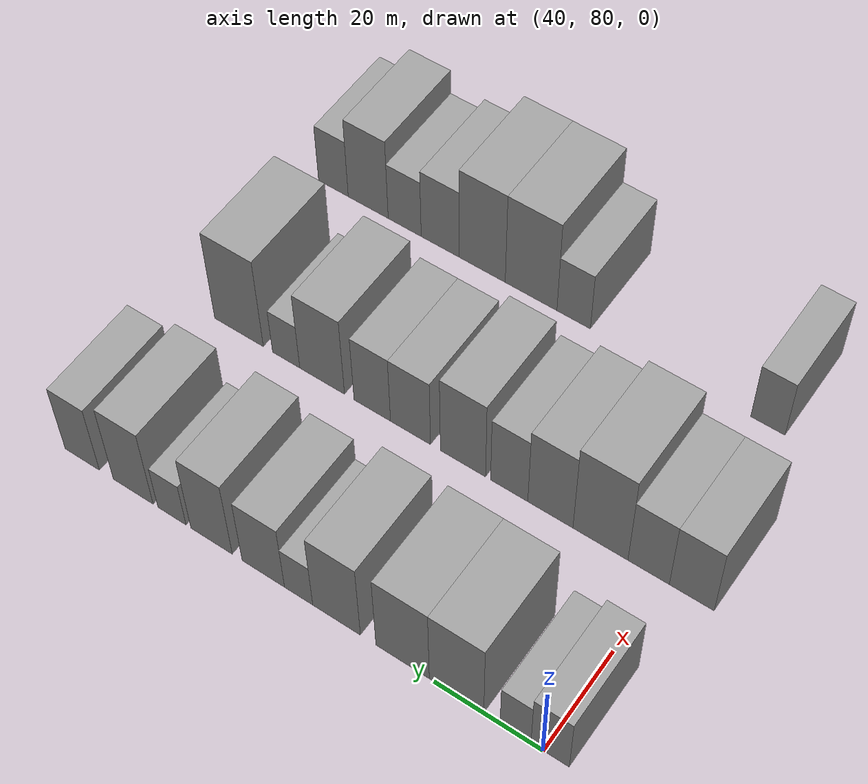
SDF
<sdf version="1.6">
 <world name="default">
  <model name="building_49">
   <static>1</static>
   <pose>50.0000 78.7735 0 0.000000 0.000000 0.000000</pose>
   <link name="link">
    <pose>0 0 7.50 0 0 0</pose>
    <collision name="collision"><geometry><box><size>20.0000 6.9052 15.0000</size></box></geometry></collision>
    <visual name="visual">
     <cast_shadows>0</cast_shadows>
     <geometry><box><size>20.0000 6.9052 15.0000</size></box></geometry>
     <material>
      <script>
       <uri>model://grey_wall/materials/scripts</uri>
       <uri>model://grey_wall/materials/textures</uri>
       <name>vrc/grey_wall</name>
      </script>
     </material>
    </visual>
   </link>
  </model>
  <model name="building_50">
   <static>1</static>
   <pose>50.0000 85.0371 0 0.000000 0.000000 0.000000</pose>
   <link name="link">
    <pose>0 0 6.00 0 0 0</pose>
    <collision name="collision"><geometry><box><size>20.0000 5.6220 12.0000</size></box></geometry></collision>
    <visual name="visual">
     <cast_shadows>0</cast_shadows>
     <geometry><box><size>20.0000 5.6220 12.0000</size></box></geometry>
     <material>
      <script>
       <uri>model://grey_wall/materials/scripts</uri>
       <uri>model://grey_wall/materials/textures</uri>
       <name>vrc/grey_wall</name>
      </script>
     </material>
    </visual>
   </link>
  </model>
  <model name="building_51">
   <static>1</static>
   <pose>50.0000 95.9255 0 0.000000 0.000000 0.000000</pose>
   <link name="link">
    <pose>0 0 10.50 0 0 0</pose>
    <collision name="collision"><geometry><box><size>20.0000 10.1547 21.0000</size></box></geometry></collision>
    <visual name="visual">
     <cast_shadows>0</cast_shadows>
     <geometry><box><size>20.0000 10.1547 21.0000</size></box></geometry>
     <material>
      <script>
       <uri>model://grey_wall/materials/scripts</uri>
       <uri>model://grey_wall/materials/textures</uri>
       <name>vrc/grey_wall</name>
      </script>
     </material>
    </visual>
   </link>
  </model>
  <model name="building_52">
   <static>1</static>
   <pose>50.0000 106.0826 0 0.000000 0.000000 0.000000</pose>
   <link name="link">
    <pose>0 0 10.50 0 0 0</pose>
    <collision name="collision"><geometry><box><size>20.0000 10.1595 21.0000</size></box></geometry></collision>
    <visual name="visual">
     <cast_shadows>0</cast_shadows>
     <geometry><box><size>20.0000 10.1595 21.0000</size></box></geometry>
     <material>
      <script>
       <uri>model://grey_wall/materials/scripts</uri>
       <uri>model://grey_wall/materials/textures</uri>
       <name>vrc/grey_wall</name>
      </script>
     </material>
    </visual>
   </link>
  </model>
  <model name="building_53">
   <static>1</static>
   <pose>50.0000 118.8190 0 0.000000 0.000000 0.000000</pose>
   <link name="link">
    <pose>0 0 10.50 0 0 0</pose>
    <collision name="collision"><geometry><box><size>20.0000 9.3132 21.0000</size></box></geometry></collision>
    <visual name="visual">
     <cast_shadows>0</cast_shadows>
     <geometry><box><size>20.0000 9.3132 21.0000</size></box></geometry>
     <material>
      <script>
       <uri>model://grey_wall/materials/scripts</uri>
       <uri>model://grey_wall/materials/textures</uri>
       <name>vrc/grey_wall</name>
      </script>
     </material>
    </visual>
   </link>
  </model>
  <model name="building_54">
   <static>1</static>
   <pose>50.0000 126.2785 0 0.000000 0.000000 0.000000</pose>
   <link name="link">
    <pose>0 0 6.00 0 0 0</pose>
    <collision name="collision"><geometry><box><size>20.0000 5.6057 12.0000</size></box></geometry></collision>
    <visual name="visual">
     <cast_shadows>0</cast_shadows>
     <geometry><box><size>20.0000 5.6057 12.0000</size></box></geometry>
     <material>
      <script>
       <uri>model://grey_wall/materials/scripts</uri>
       <uri>model://grey_wall/materials/textures</uri>
       <name>vrc/grey_wall</name>
      </script>
     </material>
    </visual>
   </link>
  </model>
  <model name="building_55">
   <static>1</static>
   <pose>50.0000 133.3450 0 0.000000 0.000000 0.000000</pose>
   <link name="link">
    <pose>0 0 9.00 0 0 0</pose>
    <collision name="collision"><geometry><box><size>20.0000 8.5273 18.0000</size></box></geometry></collision>
    <visual name="visual">
     <cast_shadows>0</cast_shadows>
     <geometry><box><size>20.0000 8.5273 18.0000</size></box></geometry>
     <material>
      <script>
       <uri>model://grey_wall/materials/scripts</uri>
       <uri>model://grey_wall/materials/textures</uri>
       <name>vrc/grey_wall</name>
      </script>
     </material>
    </visual>
   </link>
  </model>
  <model name="building_56">
   <static>1</static>
   <pose>50.0000 143.8687 0 0.000000 0.000000 0.000000</pose>
   <link name="link">
    <pose>0 0 10.50 0 0 0</pose>
    <collision name="collision"><geometry><box><size>20.0000 8.5202 21.0000</size></box></geometry></collision>
    <visual name="visual">
     <cast_shadows>0</cast_shadows>
     <geometry><box><size>20.0000 8.5202 21.0000</size></box></geometry>
     <material>
      <script>
       <uri>model://grey_wall/materials/scripts</uri>
       <uri>model://grey_wall/materials/textures</uri>
       <name>vrc/grey_wall</name>
      </script>
     </material>
    </visual>
   </link>
  </model>
  <model name="building_57">
   <static>1</static>
   <pose>50.0000 152.0694 0 0.000000 0.000000 0.000000</pose>
   <link name="link">
    <pose>0 0 6.00 0 0 0</pose>
    <collision name="collision"><geometry><box><size>20.0000 5.8811 12.0000</size></box></geometry></collision>
    <visual name="visual">
     <cast_shadows>0</cast_shadows>
     <geometry><box><size>20.0000 5.8811 12.0000</size></box></geometry>
     <material>
      <script>
       <uri>model://grey_wall/materials/scripts</uri>
       <uri>model://grey_wall/materials/textures</uri>
       <name>vrc/grey_wall</name>
      </script>
     </material>
    </visual>
   </link>
  </model>
  <model name="building_58">
   <static>1</static>
   <pose>50.0000 160.2288 0 0.000000 0.000000 0.000000</pose>
   <link name="link">
    <pose>0 0 10.50 0 0 0</pose>
    <collision name="collision"><geometry><box><size>20.0000 8.4379 21.0000</size></box></geometry></collision>
    <visual name="visual">
     <cast_shadows>0</cast_shadows>
     <geometry><box><size>20.0000 8.4379 21.0000</size></box></geometry>
     <material>
      <script>
       <uri>model://grey_wall/materials/scripts</uri>
       <uri>model://grey_wall/materials/textures</uri>
       <name>vrc/grey_wall</name>
      </script>
     </material>
    </visual>
   </link>
  </model>
  <model name="building_59">
   <static>1</static>
   <pose>50.0000 171.1555 0 0.000000 0.000000 0.000000</pose>
   <link name="link">
    <pose>0 0 9.00 0 0 0</pose>
    <collision name="collision"><geometry><box><size>20.0000 7.4154 18.0000</size></box></geometry></collision>
    <visual name="visual">
     <cast_shadows>0</cast_shadows>
     <geometry><box><size>20.0000 7.4154 18.0000</size></box></geometry>
     <material>
      <script>
       <uri>model://grey_wall/materials/scripts</uri>
       <uri>model://grey_wall/materials/textures</uri>
       <name>vrc/grey_wall</name>
      </script>
     </material>
    </visual>
   </link>
  </model>
  <model name="building_128">
   <static>1</static>
   <pose>85.0000 74.6998 0 0.000000 0.000000 0.000000</pose>
   <link name="link">
    <pose>0 0 9.00 0 0 0</pose>
    <collision name="collision"><geometry><box><size>20.0000 8.2606 18.0000</size></box></geometry></collision>
    <visual name="visual">
     <cast_shadows>0</cast_shadows>
     <geometry><box><size>20.0000 8.2606 18.0000</size></box></geometry>
     <material>
      <script>
       <uri>model://grey_wall/materials/scripts</uri>
       <uri>model://grey_wall/materials/textures</uri>
       <name>vrc/grey_wall</name>
      </script>
     </material>
    </visual>
   </link>
  </model>
  <model name="building_129">
   <static>1</static>
   <pose>85.0000 82.6977 0 0.000000 0.000000 0.000000</pose>
   <link name="link">
    <pose>0 0 9.00 0 0 0</pose>
    <collision name="collision"><geometry><box><size>20.0000 7.7354 18.0000</size></box></geometry></collision>
    <visual name="visual">
     <cast_shadows>0</cast_shadows>
     <geometry><box><size>20.0000 7.7354 18.0000</size></box></geometry>
     <material>
      <script>
       <uri>model://grey_wall/materials/scripts</uri>
       <uri>model://grey_wall/materials/textures</uri>
       <name>vrc/grey_wall</name>
      </script>
     </material>
    </visual>
   </link>
  </model>
  <model name="building_130">
   <static>1</static>
   <pose>85.0000 91.8012 0 0.000000 0.000000 0.000000</pose>
   <link name="link">
    <pose>0 0 12.00 0 0 0</pose>
    <collision name="collision"><geometry><box><size>20.0000 10.4715 24.0000</size></box></geometry></collision>
    <visual name="visual">
     <cast_shadows>0</cast_shadows>
     <geometry><box><size>20.0000 10.4715 24.0000</size></box></geometry>
     <material>
      <script>
       <uri>model://grey_wall/materials/scripts</uri>
       <uri>model://grey_wall/materials/textures</uri>
       <name>vrc/grey_wall</name>
      </script>
     </material>
    </visual>
   </link>
  </model>
  <model name="building_131">
   <static>1</static>
   <pose>85.0000 101.4174 0 0.000000 0.000000 0.000000</pose>
   <link name="link">
    <pose>0 0 10.50 0 0 0</pose>
    <collision name="collision"><geometry><box><size>20.0000 8.7608 21.0000</size></box></geometry></collision>
    <visual name="visual">
     <cast_shadows>0</cast_shadows>
     <geometry><box><size>20.0000 8.7608 21.0000</size></box></geometry>
     <material>
      <script>
       <uri>model://grey_wall/materials/scripts</uri>
       <uri>model://grey_wall/materials/textures</uri>
       <name>vrc/grey_wall</name>
      </script>
     </material>
    </visual>
   </link>
  </model>
  <model name="building_132">
   <static>1</static>
   <pose>85.0000 109.4583 0 0.000000 0.000000 0.000000</pose>
   <link name="link">
    <pose>0 0 9.00 0 0 0</pose>
    <collision name="collision"><geometry><box><size>20.0000 7.3210 18.0000</size></box></geometry></collision>
    <visual name="visual">
     <cast_shadows>0</cast_shadows>
     <geometry><box><size>20.0000 7.3210 18.0000</size></box></geometry>
     <material>
      <script>
       <uri>model://grey_wall/materials/scripts</uri>
       <uri>model://grey_wall/materials/textures</uri>
       <name>vrc/grey_wall</name>
      </script>
     </material>
    </visual>
   </link>
  </model>
  <model name="building_133">
   <static>1</static>
   <pose>85.0000 118.6476 0 0.000000 0.000000 0.000000</pose>
   <link name="link">
    <pose>0 0 10.50 0 0 0</pose>
    <collision name="collision"><geometry><box><size>20.0000 9.0576 21.0000</size></box></geometry></collision>
    <visual name="visual">
     <cast_shadows>0</cast_shadows>
     <geometry><box><size>20.0000 9.0576 21.0000</size></box></geometry>
     <material>
      <script>
       <uri>model://grey_wall/materials/scripts</uri>
       <uri>model://grey_wall/materials/textures</uri>
       <name>vrc/grey_wall</name>
      </script>
     </material>
    </visual>
   </link>
  </model>
  <model name="building_134">
   <static>1</static>
   <pose>85.0000 129.2675 0 0.000000 0.000000 0.000000</pose>
   <link name="link">
    <pose>0 0 9.00 0 0 0</pose>
    <collision name="collision"><geometry><box><size>20.0000 8.1823 18.0000</size></box></geometry></collision>
    <visual name="visual">
     <cast_shadows>0</cast_shadows>
     <geometry><box><size>20.0000 8.1823 18.0000</size></box></geometry>
     <material>
      <script>
       <uri>model://grey_wall/materials/scripts</uri>
       <uri>model://grey_wall/materials/textures</uri>
       <name>vrc/grey_wall</name>
      </script>
     </material>
    </visual>
   </link>
  </model>
  <model name="building_135">
   <static>1</static>
   <pose>85.0000 137.1493 0 0.000000 0.000000 0.000000</pose>
   <link name="link">
    <pose>0 0 9.00 0 0 0</pose>
    <collision name="collision"><geometry><box><size>20.0000 7.5813 18.0000</size></box></geometry></collision>
    <visual name="visual">
     <cast_shadows>0</cast_shadows>
     <geometry><box><size>20.0000 7.5813 18.0000</size></box></geometry>
     <material>
      <script>
       <uri>model://grey_wall/materials/scripts</uri>
       <uri>model://grey_wall/materials/textures</uri>
       <name>vrc/grey_wall</name>
      </script>
     </material>
    </visual>
   </link>
  </model>
  <model name="building_136">
   <static>1</static>
   <pose>85.0000 147.6770 0 0.000000 0.000000 0.000000</pose>
   <link name="link">
    <pose>0 0 10.50 0 0 0</pose>
    <collision name="collision"><geometry><box><size>20.0000 9.4741 21.0000</size></box></geometry></collision>
    <visual name="visual">
     <cast_shadows>0</cast_shadows>
     <geometry><box><size>20.0000 9.4741 21.0000</size></box></geometry>
     <material>
      <script>
       <uri>model://grey_wall/materials/scripts</uri>
       <uri>model://grey_wall/materials/textures</uri>
       <name>vrc/grey_wall</name>
      </script>
     </material>
    </visual>
   </link>
  </model>
  <model name="building_137">
   <static>1</static>
   <pose>85.0000 155.3425 0 0.000000 0.000000 0.000000</pose>
   <link name="link">
    <pose>0 0 6.00 0 0 0</pose>
    <collision name="collision"><geometry><box><size>20.0000 5.8569 12.0000</size></box></geometry></collision>
    <visual name="visual">
     <cast_shadows>0</cast_shadows>
     <geometry><box><size>20.0000 5.8569 12.0000</size></box></geometry>
     <material>
      <script>
       <uri>model://grey_wall/materials/scripts</uri>
       <uri>model://grey_wall/materials/textures</uri>
       <name>vrc/grey_wall</name>
      </script>
     </material>
    </visual>
   </link>
  </model>
  <model name="building_138">
   <static>1</static>
   <pose>85.0000 165.5948 0 0.000000 0.000000 0.000000</pose>
   <link name="link">
    <pose>0 0 12.00 0 0 0</pose>
    <collision name="collision"><geometry><box><size>20.0000 10.6478 24.0000</size></box></geometry></collision>
    <visual name="visual">
     <cast_shadows>0</cast_shadows>
     <geometry><box><size>20.0000 10.6478 24.0000</size></box></geometry>
     <material>
      <script>
       <uri>model://grey_wall/materials/scripts</uri>
       <uri>model://grey_wall/materials/textures</uri>
       <name>vrc/grey_wall</name>
      </script>
     </material>
    </visual>
   </link>
  </model>
  <model name="building_210">
   <static>1</static>
   <pose>120.0000 80.6198 0 0.000000 0.000000 0.000000</pose>
   <link name="link">
    <pose>0 0 7.50 0 0 0</pose>
    <collision name="collision"><geometry><box><size>20.0000 6.5746 15.0000</size></box></geometry></collision>
    <visual name="visual">
     <cast_shadows>0</cast_shadows>
     <geometry><box><size>20.0000 6.5746 15.0000</size></box></geometry>
     <material>
      <script>
       <uri>model://grey_wall/materials/scripts</uri>
       <uri>model://grey_wall/materials/textures</uri>
       <name>vrc/grey_wall</name>
      </script>
     </material>
    </visual>
   </link>
  </model>
  <model name="building_211">
   <static>1</static>
   <pose>120.0000 119.2564 0 0.000000 0.000000 0.000000</pose>
   <link name="link">
    <pose>0 0 7.50 0 0 0</pose>
    <collision name="collision"><geometry><box><size>20.0000 6.8995 15.0000</size></box></geometry></collision>
    <visual name="visual">
     <cast_shadows>0</cast_shadows>
     <geometry><box><size>20.0000 6.8995 15.0000</size></box></geometry>
     <material>
      <script>
       <uri>model://grey_wall/materials/scripts</uri>
       <uri>model://grey_wall/materials/textures</uri>
       <name>vrc/grey_wall</name>
      </script>
     </material>
    </visual>
   </link>
  </model>
  <model name="building_212">
   <static>1</static>
   <pose>120.0000 128.1244 0 0.000000 0.000000 0.000000</pose>
   <link name="link">
    <pose>0 0 12.00 0 0 0</pose>
    <collision name="collision"><geometry><box><size>20.0000 10.8366 24.0000</size></box></geometry></collision>
    <visual name="visual">
     <cast_shadows>0</cast_shadows>
     <geometry><box><size>20.0000 10.8366 24.0000</size></box></geometry>
     <material>
      <script>
       <uri>model://grey_wall/materials/scripts</uri>
       <uri>model://grey_wall/materials/textures</uri>
       <name>vrc/grey_wall</name>
      </script>
     </material>
    </visual>
   </link>
  </model>
  <model name="building_213">
   <static>1</static>
   <pose>120.0000 138.4976 0 0.000000 0.000000 0.000000</pose>
   <link name="link">
    <pose>0 0 12.00 0 0 0</pose>
    <collision name="collision"><geometry><box><size>20.0000 9.9098 24.0000</size></box></geometry></collision>
    <visual name="visual">
     <cast_shadows>0</cast_shadows>
     <geometry><box><size>20.0000 9.9098 24.0000</size></box></geometry>
     <material>
      <script>
       <uri>model://grey_wall/materials/scripts</uri>
       <uri>model://grey_wall/materials/textures</uri>
       <name>vrc/grey_wall</name>
      </script>
     </material>
    </visual>
   </link>
  </model>
  <model name="building_214">
   <static>1</static>
   <pose>120.0000 147.5301 0 0.000000 0.000000 0.000000</pose>
   <link name="link">
    <pose>0 0 9.00 0 0 0</pose>
    <collision name="collision"><geometry><box><size>20.0000 8.1551 18.0000</size></box></geometry></collision>
    <visual name="visual">
     <cast_shadows>0</cast_shadows>
     <geometry><box><size>20.0000 8.1551 18.0000</size></box></geometry>
     <material>
      <script>
       <uri>model://grey_wall/materials/scripts</uri>
       <uri>model://grey_wall/materials/textures</uri>
       <name>vrc/grey_wall</name>
      </script>
     </material>
    </visual>
   </link>
  </model>
  <model name="building_215">
   <static>1</static>
   <pose>120.0000 155.2398 0 0.000000 0.000000 0.000000</pose>
   <link name="link">
    <pose>0 0 7.50 0 0 0</pose>
    <collision name="collision"><geometry><box><size>20.0000 7.2643 15.0000</size></box></geometry></collision>
    <visual name="visual">
     <cast_shadows>0</cast_shadows>
     <geometry><box><size>20.0000 7.2643 15.0000</size></box></geometry>
     <material>
      <script>
       <uri>model://grey_wall/materials/scripts</uri>
       <uri>model://grey_wall/materials/textures</uri>
       <name>vrc/grey_wall</name>
      </script>
     </material>
    </visual>
   </link>
  </model>
  <model name="building_216">
   <static>1</static>
   <pose>120.0000 163.3300 0 0.000000 0.000000 0.000000</pose>
   <link name="link">
    <pose>0 0 10.50 0 0 0</pose>
    <collision name="collision"><geometry><box><size>20.0000 8.9161 21.0000</size></box></geometry></collision>
    <visual name="visual">
     <cast_shadows>0</cast_shadows>
     <geometry><box><size>20.0000 8.9161 21.0000</size></box></geometry>
     <material>
      <script>
       <uri>model://grey_wall/materials/scripts</uri>
       <uri>model://grey_wall/materials/textures</uri>
       <name>vrc/grey_wall</name>
      </script>
     </material>
    </visual>
   </link>
  </model>
  <model name="building_217">
   <static>1</static>
   <pose>120.0000 171.1380 0 0.000000 0.000000 0.000000</pose>
   <link name="link">
    <pose>0 0 7.50 0 0 0</pose>
    <collision name="collision"><geometry><box><size>20.0000 6.7000 15.0000</size></box></geometry></collision>
    <visual name="visual">
     <cast_shadows>0</cast_shadows>
     <geometry><box><size>20.0000 6.7000 15.0000</size></box></geometry>
     <material>
      <script>
       <uri>model://grey_wall/materials/scripts</uri>
       <uri>model://grey_wall/materials/textures</uri>
       <name>vrc/grey_wall</name>
      </script>
     </material>
    </visual>
   </link>
  </model>
 </world>
</sdf>
